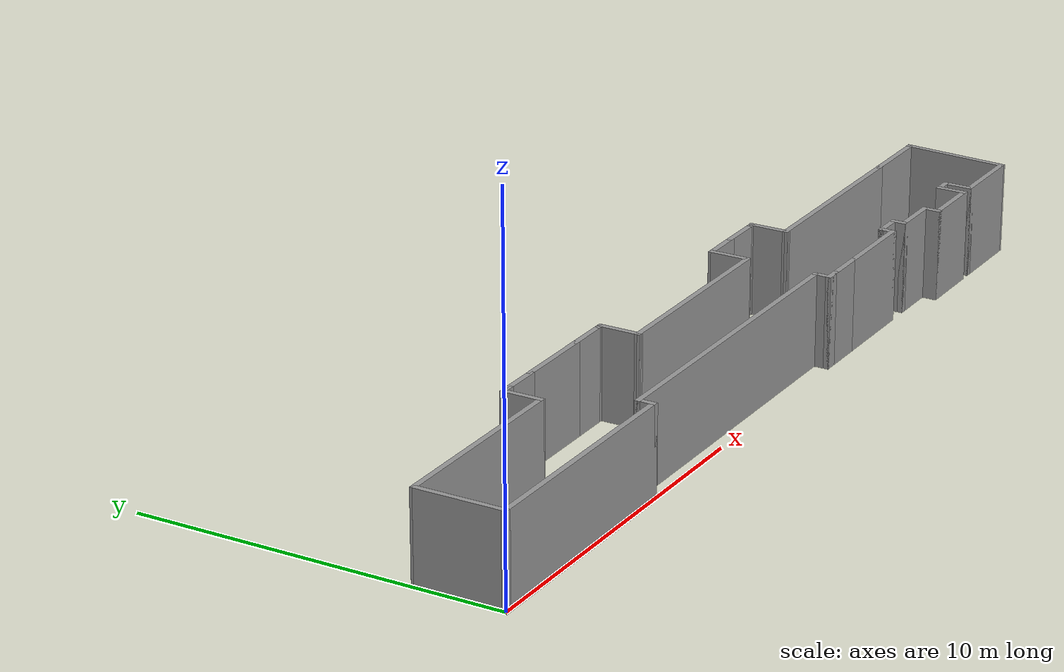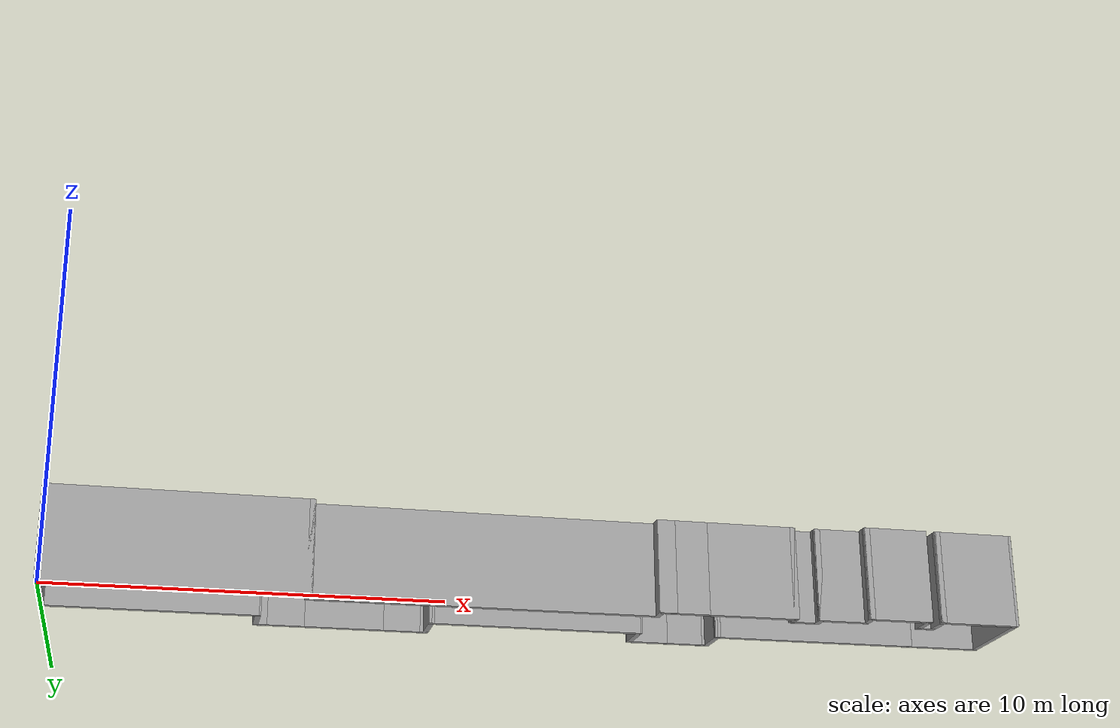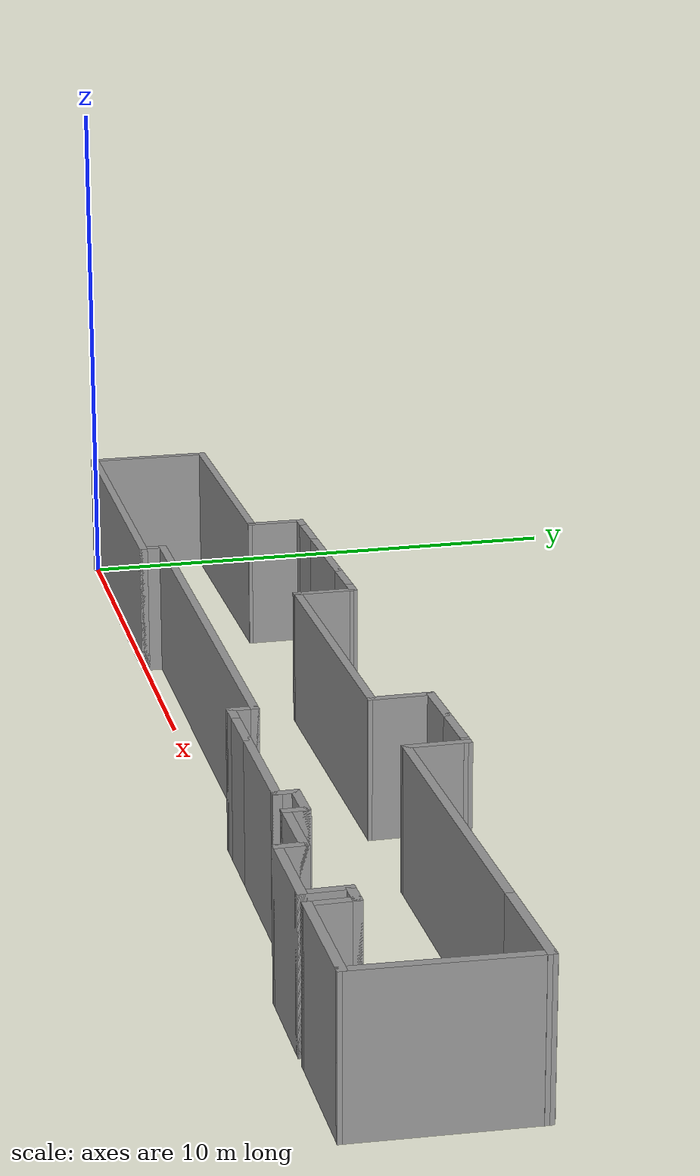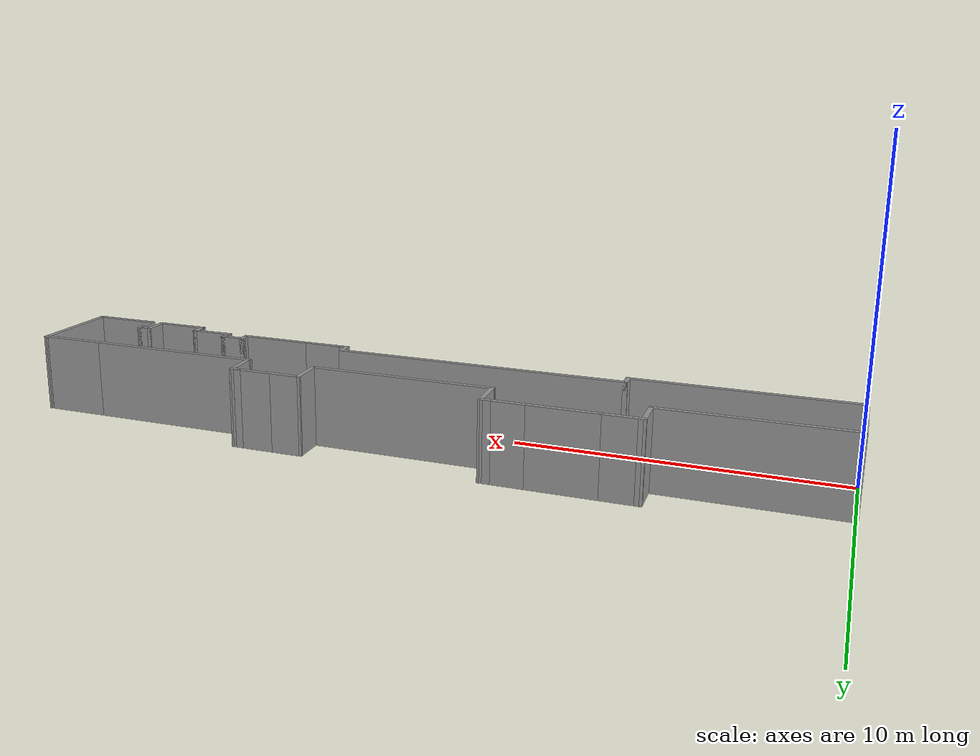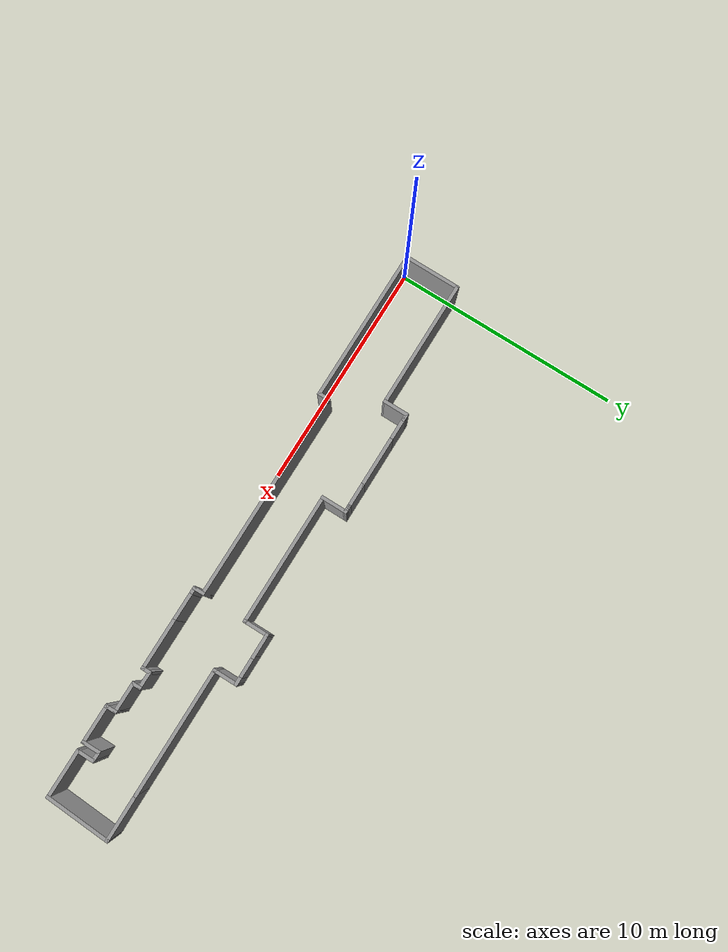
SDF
<?xml version='1.0'?>
<sdf version='1.7'>
  <model name='piso3'>
    <static>true</static>
    <link name='Muro_O01'>
      <collision name='Muro_O01_Collision'>
        <geometry><box><size>6.7400 0.15 2.5</size></box></geometry>
        <pose>0 0 1.25 0 -0 0</pose>
      </collision>
      <visual name='Muro_O01_Visual'>
        <pose>0 0 1.25 0 -0 0</pose>
        <geometry><box><size>6.7400 0.15 2.5</size></box></geometry>
        <material>
          <script>
            <uri>file://media/materials/scripts/gazebo.material</uri>
            <name>Gazebo/Grey</name>
          </script>
          <ambient>1 1 1 1</ambient>
        </material>
      </visual>
      <pose>3.2950 0.0000 0 0 -0 0.0000</pose>
    </link>
    <link name='Muro_O02'>
      <collision name='Muro_O02_Collision'>
        <geometry><box><size>0.5400 0.15 2.5</size></box></geometry>
        <pose>0 0 1.25 0 -0 0</pose>
      </collision>
      <visual name='Muro_O02_Visual'>
        <pose>0 0 1.25 0 -0 0</pose>
        <geometry><box><size>0.5400 0.15 2.5</size></box></geometry>
        <material>
          <script>
            <uri>file://media/materials/scripts/gazebo.material</uri>
            <name>Gazebo/Grey</name>
          </script>
          <ambient>1 1 1 1</ambient>
        </material>
      </visual>
      <pose>6.5900 0.1950 0 0 -0 1.5708</pose>
    </link>
    <link name='Muro_O03'>
      <collision name='Muro_O03_Collision'>
        <geometry><box><size>9.2500 0.15 2.5</size></box></geometry>
        <pose>0 0 1.25 0 -0 0</pose>
      </collision>
      <visual name='Muro_O03_Visual'>
        <pose>0 0 1.25 0 -0 0</pose>
        <geometry><box><size>9.2500 0.15 2.5</size></box></geometry>
        <material>
          <script>
            <uri>file://media/materials/scripts/gazebo.material</uri>
            <name>Gazebo/Grey</name>
          </script>
          <ambient>1 1 1 1</ambient>
        </material>
      </visual>
      <pose>11.1400 0.3900 0 0 -0 0.0000</pose>
    </link>
    <link name='Muro_O04'>
      <collision name='Muro_O04_Collision'>
        <geometry><box><size>0.5400 0.15 2.5</size></box></geometry>
        <pose>0 0 1.25 0 -0 0</pose>
      </collision>
      <visual name='Muro_O04_Visual'>
        <pose>0 0 1.25 0 -0 0</pose>
        <geometry><box><size>0.5400 0.15 2.5</size></box></geometry>
        <material>
          <script>
            <uri>file://media/materials/scripts/gazebo.material</uri>
            <name>Gazebo/Grey</name>
          </script>
          <ambient>1 1 1 1</ambient>
        </material>
      </visual>
      <pose>15.6900 0.1950 0 0 -0 -1.5708</pose>
    </link>
    <link name='Muro_O05'>
      <collision name='Muro_O05_Collision'>
        <geometry><box><size>0.4800 0.15 2.5</size></box></geometry>
        <pose>0 0 1.25 0 -0 0</pose>
      </collision>
      <visual name='Muro_O05_Visual'>
        <pose>0 0 1.25 0 -0 0</pose>
        <geometry><box><size>0.4800 0.15 2.5</size></box></geometry>
        <material>
          <script>
            <uri>file://media/materials/scripts/gazebo.material</uri>
            <name>Gazebo/Grey</name>
          </script>
          <ambient>1 1 1 1</ambient>
        </material>
      </visual>
      <pose>15.8550 0.0000 0 0 -0 0.0000</pose>
    </link>
    <link name='Muro_O06'>
      <collision name='Muro_O06_Collision'>
        <geometry><box><size>1.1800 0.15 2.5</size></box></geometry>
        <pose>0 0 1.25 0 -0 0</pose>
      </collision>
      <visual name='Muro_O06_Visual'>
        <pose>0 0 1.25 0 -0 0</pose>
        <geometry><box><size>1.1800 0.15 2.5</size></box></geometry>
        <material>
          <script>
            <uri>file://media/materials/scripts/gazebo.material</uri>
            <name>Gazebo/Grey</name>
          </script>
          <ambient>1 1 1 1</ambient>
        </material>
      </visual>
      <pose>16.5350 0.0000 0 0 -0 0.0000</pose>
    </link>
    <link name='Muro_O07'>
      <collision name='Muro_O07_Collision'>
        <geometry><box><size>2.4400 0.15 2.5</size></box></geometry>
        <pose>0 0 1.25 0 -0 0</pose>
      </collision>
      <visual name='Muro_O07_Visual'>
        <pose>0 0 1.25 0 -0 0</pose>
        <geometry><box><size>2.4400 0.15 2.5</size></box></geometry>
        <material>
          <script>
            <uri>file://media/materials/scripts/gazebo.material</uri>
            <name>Gazebo/Grey</name>
          </script>
          <ambient>1 1 1 1</ambient>
        </material>
      </visual>
      <pose>18.1950 0.0000 0 0 -0 0.0000</pose>
    </link>
    <link name='Muro_O08'>
      <collision name='Muro_O08_Collision'>
        <geometry><box><size>0.4500 0.15 2.5</size></box></geometry>
        <pose>0 0 1.25 0 -0 0</pose>
      </collision>
      <visual name='Muro_O08_Visual'>
        <pose>0 0 1.25 0 -0 0</pose>
        <geometry><box><size>0.4500 0.15 2.5</size></box></geometry>
        <material>
          <script>
            <uri>file://media/materials/scripts/gazebo.material</uri>
            <name>Gazebo/Grey</name>
          </script>
          <ambient>1 1 1 1</ambient>
        </material>
      </visual>
      <pose>19.3400 0.1500 0 0 -0 1.5708</pose>
    </link>
    <link name='Muro_O09'>
      <collision name='Muro_O09_Collision'>
        <geometry><box><size>0.8450 0.15 2.5</size></box></geometry>
        <pose>0 0 1.25 0 -0 0</pose>
      </collision>
      <visual name='Muro_O09_Visual'>
        <pose>0 0 1.25 0 -0 0</pose>
        <geometry><box><size>0.8450 0.15 2.5</size></box></geometry>
        <material>
          <script>
            <uri>file://media/materials/scripts/gazebo.material</uri>
            <name>Gazebo/Grey</name>
          </script>
          <ambient>1 1 1 1</ambient>
        </material>
      </visual>
      <pose>19.6875 0.3000 0 0 -0 0.0000</pose>
    </link>
    <link name='Muro_O10'>
      <collision name='Muro_O10_Collision'>
        <geometry><box><size>0.4500 0.15 2.5</size></box></geometry>
        <pose>0 0 1.25 0 -0 0</pose>
      </collision>
      <visual name='Muro_O10_Visual'>
        <pose>0 0 1.25 0 -0 0</pose>
        <geometry><box><size>0.4500 0.15 2.5</size></box></geometry>
        <material>
          <script>
            <uri>file://media/materials/scripts/gazebo.material</uri>
            <name>Gazebo/Grey</name>
          </script>
          <ambient>1 1 1 1</ambient>
        </material>
      </visual>
      <pose>20.0350 0.1500 0 0 -0 -1.5708</pose>
    </link>
    <link name='Muro_O11'>
      <collision name='Muro_O11_Collision'>
        <geometry><box><size>1.4100 0.15 2.5</size></box></geometry>
        <pose>0 0 1.25 0 -0 0</pose>
      </collision>
      <visual name='Muro_O11_Visual'>
        <pose>0 0 1.25 0 -0 0</pose>
        <geometry><box><size>1.4100 0.15 2.5</size></box></geometry>
        <material>
          <script>
            <uri>file://media/materials/scripts/gazebo.material</uri>
            <name>Gazebo/Grey</name>
          </script>
          <ambient>1 1 1 1</ambient>
        </material>
      </visual>
      <pose>20.6650 0.0000 0 0 -0 0.0000</pose>
    </link>
    <link name='Muro_O12'>
      <collision name='Muro_O12_Collision'>
        <geometry><box><size>0.5400 0.15 2.5</size></box></geometry>
        <pose>0 0 1.25 0 -0 0</pose>
      </collision>
      <visual name='Muro_O12_Visual'>
        <pose>0 0 1.25 0 -0 0</pose>
        <geometry><box><size>0.5400 0.15 2.5</size></box></geometry>
        <material>
          <script>
            <uri>file://media/materials/scripts/gazebo.material</uri>
            <name>Gazebo/Grey</name>
          </script>
          <ambient>1 1 1 1</ambient>
        </material>
      </visual>
      <pose>21.2950 -0.1950 0 0 -0 -1.5708</pose>
    </link>
    <link name='Muro_O13'>
      <collision name='Muro_O13_Collision'>
        <geometry><box><size>1.7600 0.15 2.5</size></box></geometry>
        <pose>0 0 1.25 0 -0 0</pose>
      </collision>
      <visual name='Muro_O13_Visual'>
        <pose>0 0 1.25 0 -0 0</pose>
        <geometry><box><size>1.7600 0.15 2.5</size></box></geometry>
        <material>
          <script>
            <uri>file://media/materials/scripts/gazebo.material</uri>
            <name>Gazebo/Grey</name>
          </script>
          <ambient>1 1 1 1</ambient>
        </material>
      </visual>
      <pose>22.1000 -0.3900 0 0 -0 0.0000</pose>
    </link>
    <link name='Muro_O14'>
      <collision name='Muro_O14_Collision'>
        <geometry><box><size>0.8500 0.15 2.5</size></box></geometry>
        <pose>0 0 1.25 0 -0 0</pose>
      </collision>
      <visual name='Muro_O14_Visual'>
        <pose>0 0 1.25 0 -0 0</pose>
        <geometry><box><size>0.8500 0.15 2.5</size></box></geometry>
        <material>
          <script>
            <uri>file://media/materials/scripts/gazebo.material</uri>
            <name>Gazebo/Grey</name>
          </script>
          <ambient>1 1 1 1</ambient>
        </material>
      </visual>
      <pose>22.9050 -0.0400 0 0 -0 1.5708</pose>
    </link>
    <link name='Muro_O15'>
      <collision name='Muro_O15_Collision'>
        <geometry><box><size>0.5400 0.15 2.5</size></box></geometry>
        <pose>0 0 1.25 0 -0 0</pose>
      </collision>
      <visual name='Muro_O15_Visual'>
        <pose>0 0 1.25 0 -0 0</pose>
        <geometry><box><size>0.5400 0.15 2.5</size></box></geometry>
        <material>
          <script>
            <uri>file://media/materials/scripts/gazebo.material</uri>
            <name>Gazebo/Grey</name>
          </script>
          <ambient>1 1 1 1</ambient>
        </material>
      </visual>
      <pose>23.1000 0.3100 0 0 -0 0.0000</pose>
    </link>
    <link name='Muro_O16'>
      <collision name='Muro_O16_Collision'>
        <geometry><box><size>0.8500 0.15 2.5</size></box></geometry>
        <pose>0 0 1.25 0 -0 0</pose>
      </collision>
      <visual name='Muro_O16_Visual'>
        <pose>0 0 1.25 0 -0 0</pose>
        <geometry><box><size>0.8500 0.15 2.5</size></box></geometry>
        <material>
          <script>
            <uri>file://media/materials/scripts/gazebo.material</uri>
            <name>Gazebo/Grey</name>
          </script>
          <ambient>1 1 1 1</ambient>
        </material>
      </visual>
      <pose>23.2950 -0.0400 0 0 -0 -1.5708</pose>
    </link>
    <link name='Muro_O17'>
      <collision name='Muro_O17_Collision'>
        <geometry><box><size>2.2000 0.15 2.5</size></box></geometry>
        <pose>0 0 1.25 0 -0 0</pose>
      </collision>
      <visual name='Muro_O17_Visual'>
        <pose>0 0 1.25 0 -0 0</pose>
        <geometry><box><size>2.2000 0.15 2.5</size></box></geometry>
        <material>
          <script>
            <uri>file://media/materials/scripts/gazebo.material</uri>
            <name>Gazebo/Grey</name>
          </script>
          <ambient>1 1 1 1</ambient>
        </material>
      </visual>
      <pose>24.3200 -0.3900 0 0 -0 0.0000</pose>
    </link>
    <link name='Muro_E01'>
      <collision name='Muro_E01_Collision'>
        <geometry><box><size>5.6300 0.15 2.5</size></box></geometry>
        <pose>0 0 1.25 0 -0 0</pose>
      </collision>
      <visual name='Muro_E01_Visual'>
        <pose>0 0 1.25 0 -0 0</pose>
        <geometry><box><size>5.6300 0.15 2.5</size></box></geometry>
        <material>
          <script>
            <uri>file://media/materials/scripts/gazebo.material</uri>
            <name>Gazebo/Grey</name>
          </script>
          <ambient>1 1 1 1</ambient>
        </material>
      </visual>
      <pose>2.7400 2.3607 0 0 -0 0.0039</pose>
    </link>
    <link name='Muro_E02'>
      <collision name='Muro_E02_Collision'>
        <geometry><box><size>1.1440 0.15 2.5</size></box></geometry>
        <pose>0 0 1.25 0 -0 0</pose>
      </collision>
      <visual name='Muro_E02_Visual'>
        <pose>0 0 1.25 0 -0 0</pose>
        <geometry><box><size>1.1440 0.15 2.5</size></box></geometry>
        <material>
          <script>
            <uri>file://media/materials/scripts/gazebo.material</uri>
            <name>Gazebo/Grey</name>
          </script>
          <ambient>1 1 1 1</ambient>
        </material>
      </visual>
      <pose>5.4800 2.8685 0 0 -0 1.5708</pose>
    </link>
    <link name='Muro_E03'>
      <collision name='Muro_E03_Collision'>
        <geometry><box><size>0.3750 0.15 2.5</size></box></geometry>
        <pose>0 0 1.25 0 -0 0</pose>
      </collision>
      <visual name='Muro_E03_Visual'>
        <pose>0 0 1.25 0 -0 0</pose>
        <geometry><box><size>0.3750 0.15 2.5</size></box></geometry>
        <material>
          <script>
            <uri>file://media/materials/scripts/gazebo.material</uri>
            <name>Gazebo/Grey</name>
          </script>
          <ambient>1 1 1 1</ambient>
        </material>
      </visual>
      <pose>5.5925 3.3659 0 0 -0 0.0039</pose>
    </link>
    <link name='Muro_E04'>
      <collision name='Muro_E04_Collision'>
        <geometry><box><size>1.1400 0.15 2.5</size></box></geometry>
        <pose>0 0 1.25 0 -0 0</pose>
      </collision>
      <visual name='Muro_E04_Visual'>
        <pose>0 0 1.25 0 -0 0</pose>
        <geometry><box><size>1.1400 0.15 2.5</size></box></geometry>
        <material>
          <script>
            <uri>file://media/materials/scripts/gazebo.material</uri>
            <name>Gazebo/Grey</name>
          </script>
          <ambient>1 1 1 1</ambient>
        </material>
      </visual>
      <pose>6.2000 3.3683 0 0 -0 0.0039</pose>
    </link>
    <link name='Muro_E05'>
      <collision name='Muro_E05_Collision'>
        <geometry><box><size>2.2700 0.15 2.5</size></box></geometry>
        <pose>0 0 1.25 0 -0 0</pose>
      </collision>
      <visual name='Muro_E05_Visual'>
        <pose>0 0 1.25 0 -0 0</pose>
        <geometry><box><size>2.2700 0.15 2.5</size></box></geometry>
        <material>
          <script>
            <uri>file://media/materials/scripts/gazebo.material</uri>
            <name>Gazebo/Grey</name>
          </script>
          <ambient>1 1 1 1</ambient>
        </material>
      </visual>
      <pose>7.7550 3.3744 0 0 -0 0.0039</pose>
    </link>
    <link name='Muro_E06'>
      <collision name='Muro_E06_Collision'>
        <geometry><box><size>1.1400 0.15 2.5</size></box></geometry>
        <pose>0 0 1.25 0 -0 0</pose>
      </collision>
      <visual name='Muro_E06_Visual'>
        <pose>0 0 1.25 0 -0 0</pose>
        <geometry><box><size>1.1400 0.15 2.5</size></box></geometry>
        <material>
          <script>
            <uri>file://media/materials/scripts/gazebo.material</uri>
            <name>Gazebo/Grey</name>
          </script>
          <ambient>1 1 1 1</ambient>
        </material>
      </visual>
      <pose>9.3100 3.3805 0 0 -0 0.0039</pose>
    </link>
    <link name='Muro_E07'>
      <collision name='Muro_E07_Collision'>
        <geometry><box><size>0.3850 0.15 2.5</size></box></geometry>
        <pose>0 0 1.25 0 -0 0</pose>
      </collision>
      <visual name='Muro_E07_Visual'>
        <pose>0 0 1.25 0 -0 0</pose>
        <geometry><box><size>0.3850 0.15 2.5</size></box></geometry>
        <material>
          <script>
            <uri>file://media/materials/scripts/gazebo.material</uri>
            <name>Gazebo/Grey</name>
          </script>
          <ambient>1 1 1 1</ambient>
        </material>
      </visual>
      <pose>9.9225 3.3829 0 0 -0 0.0039</pose>
    </link>
    <link name='Muro_E08'>
      <collision name='Muro_E08_Collision'>
        <geometry><box><size>1.2000 0.15 2.5</size></box></geometry>
        <pose>0 0 1.25 0 -0 0</pose>
      </collision>
      <visual name='Muro_E08_Visual'>
        <pose>0 0 1.25 0 -0 0</pose>
        <geometry><box><size>1.2000 0.15 2.5</size></box></geometry>
        <material>
          <script>
            <uri>file://media/materials/scripts/gazebo.material</uri>
            <name>Gazebo/Grey</name>
          </script>
          <ambient>1 1 1 1</ambient>
        </material>
      </visual>
      <pose>10.0400 2.8584 0 0 -0 -1.5708</pose>
    </link>
    <link name='Muro_E09'>
      <collision name='Muro_E09_Collision'>
        <geometry><box><size>5.8400 0.15 2.5</size></box></geometry>
        <pose>0 0 1.25 0 -0 0</pose>
      </collision>
      <visual name='Muro_E09_Visual'>
        <pose>0 0 1.25 0 -0 0</pose>
        <geometry><box><size>5.8400 0.15 2.5</size></box></geometry>
        <material>
          <script>
            <uri>file://media/materials/scripts/gazebo.material</uri>
            <name>Gazebo/Grey</name>
          </script>
          <ambient>1 1 1 1</ambient>
        </material>
      </visual>
      <pose>12.8850 2.3445 0 0 -0 0.0039</pose>
    </link>
    <link name='Muro_E10'>
      <collision name='Muro_E10_Collision'>
        <geometry><box><size>1.1600 0.15 2.5</size></box></geometry>
        <pose>0 0 1.25 0 -0 0</pose>
      </collision>
      <visual name='Muro_E10_Visual'>
        <pose>0 0 1.25 0 -0 0</pose>
        <geometry><box><size>1.1600 0.15 2.5</size></box></geometry>
        <material>
          <script>
            <uri>file://media/materials/scripts/gazebo.material</uri>
            <name>Gazebo/Grey</name>
          </script>
          <ambient>1 1 1 1</ambient>
        </material>
      </visual>
      <pose>15.7300 2.8607 0 0 -0 1.5708</pose>
    </link>
    <link name='Muro_E11'>
      <collision name='Muro_E11_Collision'>
        <geometry><box><size>1.1450 0.15 2.5</size></box></geometry>
        <pose>0 0 1.25 0 -0 0</pose>
      </collision>
      <visual name='Muro_E11_Visual'>
        <pose>0 0 1.25 0 -0 0</pose>
        <geometry><box><size>1.1450 0.15 2.5</size></box></geometry>
        <material>
          <script>
            <uri>file://media/materials/scripts/gazebo.material</uri>
            <name>Gazebo/Grey</name>
          </script>
          <ambient>1 1 1 1</ambient>
        </material>
      </visual>
      <pose>16.2275 3.3676 0 0 -0 0.0039</pose>
    </link>
    <link name='Muro_E12'>
      <collision name='Muro_E12_Collision'>
        <geometry><box><size>1.1400 0.15 2.5</size></box></geometry>
        <pose>0 0 1.25 0 -0 0</pose>
      </collision>
      <visual name='Muro_E12_Visual'>
        <pose>0 0 1.25 0 -0 0</pose>
        <geometry><box><size>1.1400 0.15 2.5</size></box></geometry>
        <material>
          <script>
            <uri>file://media/materials/scripts/gazebo.material</uri>
            <name>Gazebo/Grey</name>
          </script>
          <ambient>1 1 1 1</ambient>
        </material>
      </visual>
      <pose>17.2200 3.3715 0 0 -0 0.0039</pose>
    </link>
    <link name='Muro_E13'>
      <collision name='Muro_E13_Collision'>
        <geometry><box><size>0.3840 0.15 2.5</size></box></geometry>
        <pose>0 0 1.25 0 -0 0</pose>
      </collision>
      <visual name='Muro_E13_Visual'>
        <pose>0 0 1.25 0 -0 0</pose>
        <geometry><box><size>0.3840 0.15 2.5</size></box></geometry>
        <material>
          <script>
            <uri>file://media/materials/scripts/gazebo.material</uri>
            <name>Gazebo/Grey</name>
          </script>
          <ambient>1 1 1 1</ambient>
        </material>
      </visual>
      <pose>17.8320 3.3739 0 0 -0 0.0039</pose>
    </link>
    <link name='Muro_E14'>
      <collision name='Muro_E14_Collision'>
        <geometry><box><size>1.1400 0.15 2.5</size></box></geometry>
        <pose>0 0 1.25 0 -0 0</pose>
      </collision>
      <visual name='Muro_E14_Visual'>
        <pose>0 0 1.25 0 -0 0</pose>
        <geometry><box><size>1.1400 0.15 2.5</size></box></geometry>
        <material>
          <script>
            <uri>file://media/materials/scripts/gazebo.material</uri>
            <name>Gazebo/Grey</name>
          </script>
          <ambient>1 1 1 1</ambient>
        </material>
      </visual>
      <pose>17.9490 2.8794 0 0 -0 -1.5708</pose>
    </link>
    <link name='Muro_E15'>
      <collision name='Muro_E15_Collision'>
        <geometry><box><size>5.7200 0.15 2.5</size></box></geometry>
        <pose>0 0 1.25 0 -0 0</pose>
      </collision>
      <visual name='Muro_E15_Visual'>
        <pose>0 0 1.25 0 -0 0</pose>
        <geometry><box><size>5.7200 0.15 2.5</size></box></geometry>
        <material>
          <script>
            <uri>file://media/materials/scripts/gazebo.material</uri>
            <name>Gazebo/Grey</name>
          </script>
          <ambient>1 1 1 1</ambient>
        </material>
      </visual>
      <pose>20.7340 2.3953 0 0 -0 0.0039</pose>
    </link>
    <link name='Muro_E16'>
      <collision name='Muro_E16_Collision'>
        <geometry><box><size>2.1350 0.15 2.5</size></box></geometry>
        <pose>0 0 1.25 0 -0 0</pose>
      </collision>
      <visual name='Muro_E16_Visual'>
        <pose>0 0 1.25 0 -0 0</pose>
        <geometry><box><size>2.1350 0.15 2.5</size></box></geometry>
        <material>
          <script>
            <uri>file://media/materials/scripts/gazebo.material</uri>
            <name>Gazebo/Grey</name>
          </script>
          <ambient>1 1 1 1</ambient>
        </material>
      </visual>
      <pose>24.5115 2.4101 0 0 -0 0.0039</pose>
    </link>
    <link name='Lamina_ascensor'>
      <collision name='Lamina_ascensor_Collision'>
        <geometry><box><size>1.1800 0.15 2.5</size></box></geometry>
        <pose>0 0 1.25 0 -0 0</pose>
      </collision>
      <visual name='Lamina_ascensor_Visual'>
        <pose>0 0 1.25 0 -0 0</pose>
        <geometry><box><size>1.1800 0.15 2.5</size></box></geometry>
        <material>
          <script>
            <uri>file://media/materials/scripts/gazebo.material</uri>
            <name>Gazebo/Grey</name>
          </script>
          <ambient>1 1 1 1</ambient>
        </material>
      </visual>
      <pose>16.5350 0.0000 0 0 -0 0.0000</pose>
    </link>
    <link name='Lamina_escalera'>
      <collision name='Lamina_escalera_Collision'>
        <geometry><box><size>1.7600 0.15 2.5</size></box></geometry>
        <pose>0 0 1.25 0 -0 0</pose>
      </collision>
      <visual name='Lamina_escalera_Visual'>
        <pose>0 0 1.25 0 -0 0</pose>
        <geometry><box><size>1.7600 0.15 2.5</size></box></geometry>
        <material>
          <script>
            <uri>file://media/materials/scripts/gazebo.material</uri>
            <name>Gazebo/Grey</name>
          </script>
          <ambient>1 1 1 1</ambient>
        </material>
      </visual>
      <pose>22.1000 -0.3900 0 0 -0 0.0000</pose>
    </link>
    <link name='Muro_Norte'>
      <collision name='Muro_Norte_Collision'>
        <geometry><box><size>2.5000 0.15 2.5</size></box></geometry>
        <pose>0 0 1.25 0 -0 0</pose>
      </collision>
      <visual name='Muro_Norte_Visual'>
        <pose>0 0 1.25 0 -0 0</pose>
        <geometry><box><size>2.5000 0.15 2.5</size></box></geometry>
        <material>
          <script>
            <uri>file://media/materials/scripts/gazebo.material</uri>
            <name>Gazebo/Grey</name>
          </script>
          <ambient>1 1 1 1</ambient>
        </material>
      </visual>
      <pose>0.0000 1.1750 0 0 -0 1.5708</pose>
    </link>
    <link name='Muro_Sur'>
      <collision name='Muro_Sur_Collision'>
        <geometry><box><size>2.9585 0.15 2.5</size></box></geometry>
        <pose>0 0 1.25 0 -0 0</pose>
      </collision>
      <visual name='Muro_Sur_Visual'>
        <pose>0 0 1.25 0 -0 0</pose>
        <geometry><box><size>2.9585 0.15 2.5</size></box></geometry>
        <material>
          <script>
            <uri>file://media/materials/scripts/gazebo.material</uri>
            <name>Gazebo/Grey</name>
          </script>
          <ambient>1 1 1 1</ambient>
        </material>
      </visual>
      <pose>25.4245 1.0120 0 0 -0 1.5142</pose>
    </link>
  </model>
</sdf>
